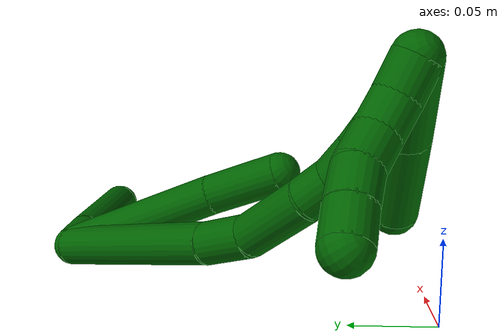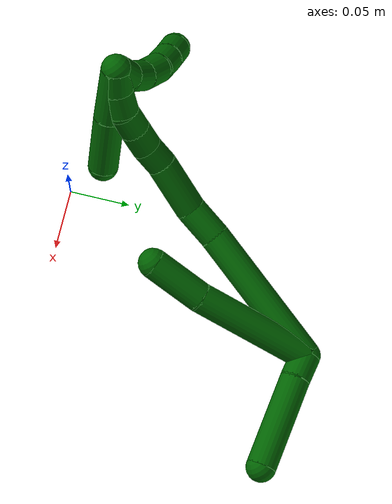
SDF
<sdf version="1.7">
 <world name="default">
  <model name="6">
   <static>0</static>
   <link name="6">
    <collision name="collision-cylinder-e_1_2_8">
     <pose>0.010141 0.017789 -0.047143 -2.78077 0.198615 -0.999927</pose>
     <geometry><cylinder><radius>0.0125</radius><length>0.102795</length></cylinder></geometry>
     <surface>
      <friction><ode><mu>1.16</mu><mu2>1.16</mu2><slip1>0</slip1><slip2>0</slip2></ode></friction>
      <contact><ode><kp>1e+06</kp><kd>1</kd><max_vel>0</max_vel><min_depth>0.001</min_depth></ode></contact>
     </surface>
    </collision>
    <visual name="visual-cylinder-e_1_2_8">
     <pose>0.010141 0.017789 -0.047143 -2.78077 0.198615 -0.999927</pose>
     <geometry><cylinder><radius>0.0125</radius><length>0.102795</length></cylinder></geometry>
     <material><ambient>0 0.392157 0.003922 1</ambient></material>
    </visual>
    <collision name="collision-cylinder-e_2_8_6">
     <pose>0.021891 0.043195 -0.116567 -2.81221 0.06821 -0.40495</pose>
     <geometry><cylinder><radius>0.0125</radius><length>0.047205</length></cylinder></geometry>
     <surface>
      <friction><ode><mu>1.16</mu><mu2>1.16</mu2><slip1>0</slip1><slip2>0</slip2></ode></friction>
      <contact><ode><kp>1e+06</kp><kd>1</kd><max_vel>0</max_vel><min_depth>0.001</min_depth></ode></contact>
     </surface>
    </collision>
    <visual name="visual-cylinder-e_2_8_6">
     <pose>0.021891 0.043195 -0.116567 -2.81221 0.06821 -0.40495</pose>
     <geometry><cylinder><radius>0.0125</radius><length>0.047205</length></cylinder></geometry>
     <material><ambient>0 0.392157 0.003922 1</ambient></material>
    </visual>
    <collision name="collision-cylinder-e_1_2_9">
     <pose>0.010446 0.002463 0.002766 -0.727547 1.23012 -0.525497</pose>
     <geometry><cylinder><radius>0.0125</radius><length>0.022166</length></cylinder></geometry>
     <surface>
      <friction><ode><mu>1.16</mu><mu2>1.16</mu2><slip1>0</slip1><slip2>0</slip2></ode></friction>
      <contact><ode><kp>1e+06</kp><kd>1</kd><max_vel>0</max_vel><min_depth>0.001</min_depth></ode></contact>
     </surface>
    </collision>
    <visual name="visual-cylinder-e_1_2_9">
     <pose>0.010446 0.002463 0.002766 -0.727547 1.23012 -0.525497</pose>
     <geometry><cylinder><radius>0.0125</radius><length>0.022166</length></cylinder></geometry>
     <material><ambient>0 0.392157 0.003922 1</ambient></material>
    </visual>
    <collision name="collision-cylinder-e_2_9_5">
     <pose>0.056399 0.014424 0.01832 -0.638823 1.14908 -0.421862</pose>
     <geometry><cylinder><radius>0.0125</radius><length>0.077834</length></cylinder></geometry>
     <surface>
      <friction><ode><mu>1.16</mu><mu2>1.16</mu2><slip1>0</slip1><slip2>0</slip2></ode></friction>
      <contact><ode><kp>1e+06</kp><kd>1</kd><max_vel>0</max_vel><min_depth>0.001</min_depth></ode></contact>
     </surface>
    </collision>
    <visual name="visual-cylinder-e_2_9_5">
     <pose>0.056399 0.014424 0.01832 -0.638823 1.14908 -0.421862</pose>
     <geometry><cylinder><radius>0.0125</radius><length>0.077834</length></cylinder></geometry>
     <material><ambient>0 0.392157 0.003922 1</ambient></material>
    </visual>
    <collision name="collision-cylinder-e_1_2_10">
     <pose>-0.017722 0.018361 -0.055384 -2.82146 -0.294882 1.48744</pose>
     <geometry><cylinder><radius>0.0125</radius><length>0.12196</length></cylinder></geometry>
     <surface>
      <friction><ode><mu>1.16</mu><mu2>1.16</mu2><slip1>0</slip1><slip2>0</slip2></ode></friction>
      <contact><ode><kp>1e+06</kp><kd>1</kd><max_vel>0</max_vel><min_depth>0.001</min_depth></ode></contact>
     </surface>
    </collision>
    <visual name="visual-cylinder-e_1_2_10">
     <pose>-0.017722 0.018361 -0.055384 -2.82146 -0.294882 1.48744</pose>
     <geometry><cylinder><radius>0.0125</radius><length>0.12196</length></cylinder></geometry>
     <material><ambient>0 0.392157 0.003922 1</ambient></material>
    </visual>
    <collision name="collision-cylinder-e_2_10_11">
     <pose>-0.037919 0.040778 -0.125177 -2.86726 -0.163778 1.07284</pose>
     <geometry><cylinder><radius>0.0125</radius><length>0.030347</length></cylinder></geometry>
     <surface>
      <friction><ode><mu>1.16</mu><mu2>1.16</mu2><slip1>0</slip1><slip2>0</slip2></ode></friction>
      <contact><ode><kp>1e+06</kp><kd>1</kd><max_vel>0</max_vel><min_depth>0.001</min_depth></ode></contact>
     </surface>
    </collision>
    <visual name="visual-cylinder-e_2_10_11">
     <pose>-0.037919 0.040778 -0.125177 -2.86726 -0.163778 1.07284</pose>
     <geometry><cylinder><radius>0.0125</radius><length>0.030347</length></cylinder></geometry>
     <material><ambient>0 0.392157 0.003922 1</ambient></material>
    </visual>
    <collision name="collision-cylinder-e_3_11_12">
     <pose>-0.041983 0.044157 -0.162659 3.11228 -0.068795 -2.33616</pose>
     <geometry><cylinder><radius>0.0125</radius><length>0.046271</length></cylinder></geometry>
     <surface>
      <friction><ode><mu>1.16</mu><mu2>1.16</mu2><slip1>0</slip1><slip2>0</slip2></ode></friction>
      <contact><ode><kp>1e+06</kp><kd>1</kd><max_vel>0</max_vel><min_depth>0.001</min_depth></ode></contact>
     </surface>
    </collision>
    <visual name="visual-cylinder-e_3_11_12">
     <pose>-0.041983 0.044157 -0.162659 3.11228 -0.068795 -2.33616</pose>
     <geometry><cylinder><radius>0.0125</radius><length>0.046271</length></cylinder></geometry>
     <material><ambient>0 0.392157 0.003922 1</ambient></material>
    </visual>
    <collision name="collision-cylinder-e_4_12_13">
     <pose>-0.042605 0.043511 -0.195699 -3.13852 0.096858 -3.07819</pose>
     <geometry><cylinder><radius>0.0125</radius><length>0.020033</length></cylinder></geometry>
     <surface>
      <friction><ode><mu>1.16</mu><mu2>1.16</mu2><slip1>0</slip1><slip2>0</slip2></ode></friction>
      <contact><ode><kp>1e+06</kp><kd>1</kd><max_vel>0</max_vel><min_depth>0.001</min_depth></ode></contact>
     </surface>
    </collision>
    <visual name="visual-cylinder-e_4_12_13">
     <pose>-0.042605 0.043511 -0.195699 -3.13852 0.096858 -3.07819</pose>
     <geometry><cylinder><radius>0.0125</radius><length>0.020033</length></cylinder></geometry>
     <material><ambient>0 0.392157 0.003922 1</ambient></material>
    </visual>
    <collision name="collision-cylinder-e_5_13_14">
     <pose>-0.040394 0.041479 -0.215807 2.9408 0.119508 1.07181</pose>
     <geometry><cylinder><radius>0.0125</radius><length>0.02084</length></cylinder></geometry>
     <surface>
      <friction><ode><mu>1.16</mu><mu2>1.16</mu2><slip1>0</slip1><slip2>0</slip2></ode></friction>
      <contact><ode><kp>1e+06</kp><kd>1</kd><max_vel>0</max_vel><min_depth>0.001</min_depth></ode></contact>
     </surface>
    </collision>
    <visual name="visual-cylinder-e_5_13_14">
     <pose>-0.040394 0.041479 -0.215807 2.9408 0.119508 1.07181</pose>
     <geometry><cylinder><radius>0.0125</radius><length>0.02084</length></cylinder></geometry>
     <material><ambient>0 0.392157 0.003922 1</ambient></material>
    </visual>
    <collision name="collision-cylinder-e_6_14_15">
     <pose>-0.037324 0.036835 -0.235592 2.88027 0.181039 1.20893</pose>
     <geometry><cylinder><radius>0.0125</radius><length>0.020305</length></cylinder></geometry>
     <surface>
      <friction><ode><mu>1.16</mu><mu2>1.16</mu2><slip1>0</slip1><slip2>0</slip2></ode></friction>
      <contact><ode><kp>1e+06</kp><kd>1</kd><max_vel>0</max_vel><min_depth>0.001</min_depth></ode></contact>
     </surface>
    </collision>
    <visual name="visual-cylinder-e_6_14_15">
     <pose>-0.037324 0.036835 -0.235592 2.88027 0.181039 1.20893</pose>
     <geometry><cylinder><radius>0.0125</radius><length>0.020305</length></cylinder></geometry>
     <material><ambient>0 0.392157 0.003922 1</ambient></material>
    </visual>
    <collision name="collision-cylinder-e_7_15_16">
     <pose>-0.03643 0.030736 -0.254647 2.78363 -0.092807 -0.502499</pose>
     <geometry><cylinder><radius>0.0125</radius><length>0.020175</length></cylinder></geometry>
     <surface>
      <friction><ode><mu>1.16</mu><mu2>1.16</mu2><slip1>0</slip1><slip2>0</slip2></ode></friction>
      <contact><ode><kp>1e+06</kp><kd>1</kd><max_vel>0</max_vel><min_depth>0.001</min_depth></ode></contact>
     </surface>
    </collision>
    <visual name="visual-cylinder-e_7_15_16">
     <pose>-0.03643 0.030736 -0.254647 2.78363 -0.092807 -0.502499</pose>
     <geometry><cylinder><radius>0.0125</radius><length>0.020175</length></cylinder></geometry>
     <material><ambient>0 0.392157 0.003922 1</ambient></material>
    </visual>
    <collision name="collision-cylinder-e_8_16_1">
     <pose>-0.038751 0.021867 -0.27243 2.57319 -0.138526 -0.466345</pose>
     <geometry><cylinder><radius>0.0125</radius><length>0.020069</length></cylinder></geometry>
     <surface>
      <friction><ode><mu>1.16</mu><mu2>1.16</mu2><slip1>0</slip1><slip2>0</slip2></ode></friction>
      <contact><ode><kp>1e+06</kp><kd>1</kd><max_vel>0</max_vel><min_depth>0.001</min_depth></ode></contact>
     </surface>
    </collision>
    <visual name="visual-cylinder-e_8_16_1">
     <pose>-0.038751 0.021867 -0.27243 2.57319 -0.138526 -0.466345</pose>
     <geometry><cylinder><radius>0.0125</radius><length>0.020069</length></cylinder></geometry>
     <material><ambient>0 0.392157 0.003922 1</ambient></material>
    </visual>
    <collision name="collision-cylinder-e_1_1_17">
     <pose>-0.037107 0.032793 -0.263467 -0.753769 0.126711 -0.05021</pose>
     <geometry><cylinder><radius>0.0125</radius><length>0.047947</length></cylinder></geometry>
     <surface>
      <friction><ode><mu>1.16</mu><mu2>1.16</mu2><slip1>0</slip1><slip2>0</slip2></ode></friction>
      <contact><ode><kp>1e+06</kp><kd>1</kd><max_vel>0</max_vel><min_depth>0.001</min_depth></ode></contact>
     </surface>
    </collision>
    <visual name="visual-cylinder-e_1_1_17">
     <pose>-0.037107 0.032793 -0.263467 -0.753769 0.126711 -0.05021</pose>
     <geometry><cylinder><radius>0.0125</radius><length>0.047947</length></cylinder></geometry>
     <material><ambient>0 0.392157 0.003922 1</ambient></material>
    </visual>
    <collision name="collision-cylinder-e_2_17_4">
     <pose>-0.031545 0.066418 -0.226893 -0.733902 0.09745 -0.037481</pose>
     <geometry><cylinder><radius>0.0125</radius><length>0.052053</length></cylinder></geometry>
     <surface>
      <friction><ode><mu>1.16</mu><mu2>1.16</mu2><slip1>0</slip1><slip2>0</slip2></ode></friction>
      <contact><ode><kp>1e+06</kp><kd>1</kd><max_vel>0</max_vel><min_depth>0.001</min_depth></ode></contact>
     </surface>
    </collision>
    <visual name="visual-cylinder-e_2_17_4">
     <pose>-0.031545 0.066418 -0.226893 -0.733902 0.09745 -0.037481</pose>
     <geometry><cylinder><radius>0.0125</radius><length>0.052053</length></cylinder></geometry>
     <material><ambient>0 0.392157 0.003922 1</ambient></material>
    </visual>
    <collision name="collision-cylinder-e_1_1_18">
     <pose>-0.046041 0.01932 -0.273237 -0.354712 -0.631584 0.11699</pose>
     <geometry><cylinder><radius>0.0125</radius><length>0.02</length></cylinder></geometry>
     <surface>
      <friction><ode><mu>1.16</mu><mu2>1.16</mu2><slip1>0</slip1><slip2>0</slip2></ode></friction>
      <contact><ode><kp>1e+06</kp><kd>1</kd><max_vel>0</max_vel><min_depth>0.001</min_depth></ode></contact>
     </surface>
    </collision>
    <visual name="visual-cylinder-e_1_1_18">
     <pose>-0.046041 0.01932 -0.273237 -0.354712 -0.631584 0.11699</pose>
     <geometry><cylinder><radius>0.0125</radius><length>0.02</length></cylinder></geometry>
     <material><ambient>0 0.392157 0.003922 1</ambient></material>
    </visual>
    <collision name="collision-cylinder-e_2_18_19">
     <pose>-0.060107 0.023223 -0.259996 -0.191414 -0.954755 0.099237</pose>
     <geometry><cylinder><radius>0.0125</radius><length>0.02</length></cylinder></geometry>
     <surface>
      <friction><ode><mu>1.16</mu><mu2>1.16</mu2><slip1>0</slip1><slip2>0</slip2></ode></friction>
      <contact><ode><kp>1e+06</kp><kd>1</kd><max_vel>0</max_vel><min_depth>0.001</min_depth></ode></contact>
     </surface>
    </collision>
    <visual name="visual-cylinder-e_2_18_19">
     <pose>-0.060107 0.023223 -0.259996 -0.191414 -0.954755 0.099237</pose>
     <geometry><cylinder><radius>0.0125</radius><length>0.02</length></cylinder></geometry>
     <material><ambient>0 0.392157 0.003922 1</ambient></material>
    </visual>
    <collision name="collision-cylinder-e_3_19_20">
     <pose>-0.077594 0.024199 -0.250716 0.034008 -1.20146 -0.023304</pose>
     <geometry><cylinder><radius>0.0125</radius><length>0.02</length></cylinder></geometry>
     <surface>
      <friction><ode><mu>1.16</mu><mu2>1.16</mu2><slip1>0</slip1><slip2>0</slip2></ode></friction>
      <contact><ode><kp>1e+06</kp><kd>1</kd><max_vel>0</max_vel><min_depth>0.001</min_depth></ode></contact>
     </surface>
    </collision>
    <visual name="visual-cylinder-e_3_19_20">
     <pose>-0.077594 0.024199 -0.250716 0.034008 -1.20146 -0.023304</pose>
     <geometry><cylinder><radius>0.0125</radius><length>0.02</length></cylinder></geometry>
     <material><ambient>0 0.392157 0.003922 1</ambient></material>
    </visual>
    <collision name="collision-cylinder-e_4_20_21">
     <pose>-0.096532 0.025988 -0.245119 -0.765436 -1.29132 0.588936</pose>
     <geometry><cylinder><radius>0.0125</radius><length>0.02</length></cylinder></geometry>
     <surface>
      <friction><ode><mu>1.16</mu><mu2>1.16</mu2><slip1>0</slip1><slip2>0</slip2></ode></friction>
      <contact><ode><kp>1e+06</kp><kd>1</kd><max_vel>0</max_vel><min_depth>0.001</min_depth></ode></contact>
     </surface>
    </collision>
    <visual name="visual-cylinder-e_4_20_21">
     <pose>-0.096532 0.025988 -0.245119 -0.765436 -1.29132 0.588936</pose>
     <geometry><cylinder><radius>0.0125</radius><length>0.02</length></cylinder></geometry>
     <material><ambient>0 0.392157 0.003922 1</ambient></material>
    </visual>
    <collision name="collision-cylinder-e_5_21_3">
     <pose>-0.115666 0.03038 -0.241347 -0.947765 -1.26029 0.715873</pose>
     <geometry><cylinder><radius>0.0125</radius><length>0.02</length></cylinder></geometry>
     <surface>
      <friction><ode><mu>1.16</mu><mu2>1.16</mu2><slip1>0</slip1><slip2>0</slip2></ode></friction>
      <contact><ode><kp>1e+06</kp><kd>1</kd><max_vel>0</max_vel><min_depth>0.001</min_depth></ode></contact>
     </surface>
    </collision>
    <visual name="visual-cylinder-e_5_21_3">
     <pose>-0.115666 0.03038 -0.241347 -0.947765 -1.26029 0.715873</pose>
     <geometry><cylinder><radius>0.0125</radius><length>0.02</length></cylinder></geometry>
     <material><ambient>0 0.392157 0.003922 1</ambient></material>
    </visual>
    <collision name="collision-sphere-3">
     <pose>-0.125187 0.032862 -0.239564 0 -0 0</pose>
     <geometry><sphere><radius>0.0125</radius></sphere></geometry>
     <surface>
      <friction><ode><mu>1.16</mu><mu2>1.16</mu2><slip1>0</slip1><slip2>0</slip2></ode></friction>
      <contact><ode><kp>1e+06</kp><kd>1</kd><max_vel>0</max_vel><min_depth>0.001</min_depth></ode></contact>
     </surface>
    </collision>
    <visual name="visual-sphere-3">
     <pose>-0.125187 0.032862 -0.239564 0 -0 0</pose>
     <geometry><sphere><radius>0.0125</radius></sphere></geometry>
     <material><ambient>0 0.392157 0.003922 1</ambient></material>
    </visual>
    <collision name="collision-sphere-21">
     <pose>-0.106144 0.027899 -0.24313 0 -0 0</pose>
     <geometry><sphere><radius>0.0125</radius></sphere></geometry>
     <surface>
      <friction><ode><mu>1.16</mu><mu2>1.16</mu2><slip1>0</slip1><slip2>0</slip2></ode></friction>
      <contact><ode><kp>1e+06</kp><kd>1</kd><max_vel>0</max_vel><min_depth>0.001</min_depth></ode></contact>
     </surface>
    </collision>
    <visual name="visual-sphere-21">
     <pose>-0.106144 0.027899 -0.24313 0 -0 0</pose>
     <geometry><sphere><radius>0.0125</radius></sphere></geometry>
     <material><ambient>0 0.392157 0.003922 1</ambient></material>
    </visual>
    <collision name="collision-sphere-20">
     <pose>-0.08692 0.024076 -0.247108 0 -0 0</pose>
     <geometry><sphere><radius>0.0125</radius></sphere></geometry>
     <surface>
      <friction><ode><mu>1.16</mu><mu2>1.16</mu2><slip1>0</slip1><slip2>0</slip2></ode></friction>
      <contact><ode><kp>1e+06</kp><kd>1</kd><max_vel>0</max_vel><min_depth>0.001</min_depth></ode></contact>
     </surface>
    </collision>
    <visual name="visual-sphere-20">
     <pose>-0.08692 0.024076 -0.247108 0 -0 0</pose>
     <geometry><sphere><radius>0.0125</radius></sphere></geometry>
     <material><ambient>0 0.392157 0.003922 1</ambient></material>
    </visual>
    <collision name="collision-sphere-19">
     <pose>-0.068268 0.024322 -0.254324 0 -0 0</pose>
     <geometry><sphere><radius>0.0125</radius></sphere></geometry>
     <surface>
      <friction><ode><mu>1.16</mu><mu2>1.16</mu2><slip1>0</slip1><slip2>0</slip2></ode></friction>
      <contact><ode><kp>1e+06</kp><kd>1</kd><max_vel>0</max_vel><min_depth>0.001</min_depth></ode></contact>
     </surface>
    </collision>
    <visual name="visual-sphere-19">
     <pose>-0.068268 0.024322 -0.254324 0 -0 0</pose>
     <geometry><sphere><radius>0.0125</radius></sphere></geometry>
     <material><ambient>0 0.392157 0.003922 1</ambient></material>
    </visual>
    <collision name="collision-sphere-10">
     <pose>-0.035445 0.036723 -0.110767 0 -0 0</pose>
     <geometry><sphere><radius>0.0125</radius></sphere></geometry>
     <surface>
      <friction><ode><mu>1.16</mu><mu2>1.16</mu2><slip1>0</slip1><slip2>0</slip2></ode></friction>
      <contact><ode><kp>1e+06</kp><kd>1</kd><max_vel>0</max_vel><min_depth>0.001</min_depth></ode></contact>
     </surface>
    </collision>
    <visual name="visual-sphere-10">
     <pose>-0.035445 0.036723 -0.110767 0 -0 0</pose>
     <geometry><sphere><radius>0.0125</radius></sphere></geometry>
     <material><ambient>0 0.392157 0.003922 1</ambient></material>
    </visual>
    <collision name="collision-sphere-5">
     <pose>0.091907 0.023922 0.031108 0 -0 0</pose>
     <geometry><sphere><radius>0.0125</radius></sphere></geometry>
     <surface>
      <friction><ode><mu>1.16</mu><mu2>1.16</mu2><slip1>0</slip1><slip2>0</slip2></ode></friction>
      <contact><ode><kp>1e+06</kp><kd>1</kd><max_vel>0</max_vel><min_depth>0.001</min_depth></ode></contact>
     </surface>
    </collision>
    <visual name="visual-sphere-5">
     <pose>0.091907 0.023922 0.031108 0 -0 0</pose>
     <geometry><sphere><radius>0.0125</radius></sphere></geometry>
     <material><ambient>0 0.392157 0.003922 1</ambient></material>
    </visual>
    <collision name="collision-sphere-6">
     <pose>0.0235 0.050812 -0.138848 0 -0 0</pose>
     <geometry><sphere><radius>0.0125</radius></sphere></geometry>
     <surface>
      <friction><ode><mu>1.16</mu><mu2>1.16</mu2><slip1>0</slip1><slip2>0</slip2></ode></friction>
      <contact><ode><kp>1e+06</kp><kd>1</kd><max_vel>0</max_vel><min_depth>0.001</min_depth></ode></contact>
     </surface>
    </collision>
    <visual name="visual-sphere-6">
     <pose>0.0235 0.050812 -0.138848 0 -0 0</pose>
     <geometry><sphere><radius>0.0125</radius></sphere></geometry>
     <material><ambient>0 0.392157 0.003922 1</ambient></material>
    </visual>
    <collision name="collision-sphere-9">
     <pose>0.020892 0.004925 0.005531 0 -0 0</pose>
     <geometry><sphere><radius>0.0125</radius></sphere></geometry>
     <surface>
      <friction><ode><mu>1.16</mu><mu2>1.16</mu2><slip1>0</slip1><slip2>0</slip2></ode></friction>
      <contact><ode><kp>1e+06</kp><kd>1</kd><max_vel>0</max_vel><min_depth>0.001</min_depth></ode></contact>
     </surface>
    </collision>
    <visual name="visual-sphere-9">
     <pose>0.020892 0.004925 0.005531 0 -0 0</pose>
     <geometry><sphere><radius>0.0125</radius></sphere></geometry>
     <material><ambient>0 0.392157 0.003922 1</ambient></material>
    </visual>
    <collision name="collision-sphere-2">
     <geometry><sphere><radius>0.0125</radius></sphere></geometry>
     <surface>
      <friction><ode><mu>1.16</mu><mu2>1.16</mu2><slip1>0</slip1><slip2>0</slip2></ode></friction>
      <contact><ode><kp>1e+06</kp><kd>1</kd><max_vel>0</max_vel><min_depth>0.001</min_depth></ode></contact>
     </surface>
    </collision>
    <visual name="visual-sphere-2">
     <geometry><sphere><radius>0.0125</radius></sphere></geometry>
     <material><ambient>0 0.392157 0.003922 1</ambient></material>
    </visual>
    <collision name="collision-sphere-8">
     <pose>0.020283 0.035578 -0.094285 0 -0 0</pose>
     <geometry><sphere><radius>0.0125</radius></sphere></geometry>
     <surface>
      <friction><ode><mu>1.16</mu><mu2>1.16</mu2><slip1>0</slip1><slip2>0</slip2></ode></friction>
      <contact><ode><kp>1e+06</kp><kd>1</kd><max_vel>0</max_vel><min_depth>0.001</min_depth></ode></contact>
     </surface>
    </collision>
    <visual name="visual-sphere-8">
     <pose>0.020283 0.035578 -0.094285 0 -0 0</pose>
     <geometry><sphere><radius>0.0125</radius></sphere></geometry>
     <material><ambient>0 0.392157 0.003922 1</ambient></material>
    </visual>
    <collision name="collision-sphere-11">
     <pose>-0.040393 0.044834 -0.139588 0 -0 0</pose>
     <geometry><sphere><radius>0.0125</radius></sphere></geometry>
     <surface>
      <friction><ode><mu>1.16</mu><mu2>1.16</mu2><slip1>0</slip1><slip2>0</slip2></ode></friction>
      <contact><ode><kp>1e+06</kp><kd>1</kd><max_vel>0</max_vel><min_depth>0.001</min_depth></ode></contact>
     </surface>
    </collision>
    <visual name="visual-sphere-11">
     <pose>-0.040393 0.044834 -0.139588 0 -0 0</pose>
     <geometry><sphere><radius>0.0125</radius></sphere></geometry>
     <material><ambient>0 0.392157 0.003922 1</ambient></material>
    </visual>
    <collision name="collision-sphere-12">
     <pose>-0.043573 0.043481 -0.185729 0 -0 0</pose>
     <geometry><sphere><radius>0.0125</radius></sphere></geometry>
     <surface>
      <friction><ode><mu>1.16</mu><mu2>1.16</mu2><slip1>0</slip1><slip2>0</slip2></ode></friction>
      <contact><ode><kp>1e+06</kp><kd>1</kd><max_vel>0</max_vel><min_depth>0.001</min_depth></ode></contact>
     </surface>
    </collision>
    <visual name="visual-sphere-12">
     <pose>-0.043573 0.043481 -0.185729 0 -0 0</pose>
     <geometry><sphere><radius>0.0125</radius></sphere></geometry>
     <material><ambient>0 0.392157 0.003922 1</ambient></material>
    </visual>
    <collision name="collision-sphere-13">
     <pose>-0.041636 0.043542 -0.205669 0 -0 0</pose>
     <geometry><sphere><radius>0.0125</radius></sphere></geometry>
     <surface>
      <friction><ode><mu>1.16</mu><mu2>1.16</mu2><slip1>0</slip1><slip2>0</slip2></ode></friction>
      <contact><ode><kp>1e+06</kp><kd>1</kd><max_vel>0</max_vel><min_depth>0.001</min_depth></ode></contact>
     </surface>
    </collision>
    <visual name="visual-sphere-13">
     <pose>-0.041636 0.043542 -0.205669 0 -0 0</pose>
     <geometry><sphere><radius>0.0125</radius></sphere></geometry>
     <material><ambient>0 0.392157 0.003922 1</ambient></material>
    </visual>
    <collision name="collision-sphere-14">
     <pose>-0.039152 0.039415 -0.225944 0 -0 0</pose>
     <geometry><sphere><radius>0.0125</radius></sphere></geometry>
     <surface>
      <friction><ode><mu>1.16</mu><mu2>1.16</mu2><slip1>0</slip1><slip2>0</slip2></ode></friction>
      <contact><ode><kp>1e+06</kp><kd>1</kd><max_vel>0</max_vel><min_depth>0.001</min_depth></ode></contact>
     </surface>
    </collision>
    <visual name="visual-sphere-14">
     <pose>-0.039152 0.039415 -0.225944 0 -0 0</pose>
     <geometry><sphere><radius>0.0125</radius></sphere></geometry>
     <material><ambient>0 0.392157 0.003922 1</ambient></material>
    </visual>
    <collision name="collision-sphere-15">
     <pose>-0.035496 0.034255 -0.245239 0 -0 0</pose>
     <geometry><sphere><radius>0.0125</radius></sphere></geometry>
     <surface>
      <friction><ode><mu>1.16</mu><mu2>1.16</mu2><slip1>0</slip1><slip2>0</slip2></ode></friction>
      <contact><ode><kp>1e+06</kp><kd>1</kd><max_vel>0</max_vel><min_depth>0.001</min_depth></ode></contact>
     </surface>
    </collision>
    <visual name="visual-sphere-15">
     <pose>-0.035496 0.034255 -0.245239 0 -0 0</pose>
     <geometry><sphere><radius>0.0125</radius></sphere></geometry>
     <material><ambient>0 0.392157 0.003922 1</ambient></material>
    </visual>
    <collision name="collision-sphere-16">
     <pose>-0.037365 0.027217 -0.264054 0 -0 0</pose>
     <geometry><sphere><radius>0.0125</radius></sphere></geometry>
     <surface>
      <friction><ode><mu>1.16</mu><mu2>1.16</mu2><slip1>0</slip1><slip2>0</slip2></ode></friction>
      <contact><ode><kp>1e+06</kp><kd>1</kd><max_vel>0</max_vel><min_depth>0.001</min_depth></ode></contact>
     </surface>
    </collision>
    <visual name="visual-sphere-16">
     <pose>-0.037365 0.027217 -0.264054 0 -0 0</pose>
     <geometry><sphere><radius>0.0125</radius></sphere></geometry>
     <material><ambient>0 0.392157 0.003922 1</ambient></material>
    </visual>
    <collision name="collision-sphere-1">
     <pose>-0.040137 0.016517 -0.280806 0 -0 0</pose>
     <geometry><sphere><radius>0.0125</radius></sphere></geometry>
     <surface>
      <friction><ode><mu>1.16</mu><mu2>1.16</mu2><slip1>0</slip1><slip2>0</slip2></ode></friction>
      <contact><ode><kp>1e+06</kp><kd>1</kd><max_vel>0</max_vel><min_depth>0.001</min_depth></ode></contact>
     </surface>
    </collision>
    <visual name="visual-sphere-1">
     <pose>-0.040137 0.016517 -0.280806 0 -0 0</pose>
     <geometry><sphere><radius>0.0125</radius></sphere></geometry>
     <material><ambient>0 0.392157 0.003922 1</ambient></material>
    </visual>
    <collision name="collision-sphere-18">
     <pose>-0.051945 0.022123 -0.265669 0 -0 0</pose>
     <geometry><sphere><radius>0.0125</radius></sphere></geometry>
     <surface>
      <friction><ode><mu>1.16</mu><mu2>1.16</mu2><slip1>0</slip1><slip2>0</slip2></ode></friction>
      <contact><ode><kp>1e+06</kp><kd>1</kd><max_vel>0</max_vel><min_depth>0.001</min_depth></ode></contact>
     </surface>
    </collision>
    <visual name="visual-sphere-18">
     <pose>-0.051945 0.022123 -0.265669 0 -0 0</pose>
     <geometry><sphere><radius>0.0125</radius></sphere></geometry>
     <material><ambient>0 0.392157 0.003922 1</ambient></material>
    </visual>
    <collision name="collision-sphere-17">
     <pose>-0.034077 0.049068 -0.246127 0 -0 0</pose>
     <geometry><sphere><radius>0.0125</radius></sphere></geometry>
     <surface>
      <friction><ode><mu>1.16</mu><mu2>1.16</mu2><slip1>0</slip1><slip2>0</slip2></ode></friction>
      <contact><ode><kp>1e+06</kp><kd>1</kd><max_vel>0</max_vel><min_depth>0.001</min_depth></ode></contact>
     </surface>
    </collision>
    <visual name="visual-sphere-17">
     <pose>-0.034077 0.049068 -0.246127 0 -0 0</pose>
     <geometry><sphere><radius>0.0125</radius></sphere></geometry>
     <material><ambient>0 0.392157 0.003922 1</ambient></material>
    </visual>
    <collision name="collision-sphere-4">
     <pose>-0.029013 0.083767 -0.207658 0 -0 0</pose>
     <geometry><sphere><radius>0.0125</radius></sphere></geometry>
     <surface>
      <friction><ode><mu>1.16</mu><mu2>1.16</mu2><slip1>0</slip1><slip2>0</slip2></ode></friction>
      <contact><ode><kp>1e+06</kp><kd>1</kd><max_vel>0</max_vel><min_depth>0.001</min_depth></ode></contact>
     </surface>
    </collision>
    <visual name="visual-sphere-4">
     <pose>-0.029013 0.083767 -0.207658 0 -0 0</pose>
     <geometry><sphere><radius>0.0125</radius></sphere></geometry>
     <material><ambient>0 0.392157 0.003922 1</ambient></material>
    </visual>
    <inertial>
     <pose>-0.018484 0.0288 -0.134132 0 -0 0</pose>
     <mass>0.75</mass>
     <inertia>
      <ixx>0.000169</ixx>
      <ixy>0</ixy>
      <ixz>0</ixz>
      <iyy>9.1e-05</iyy>
      <iyz>0</iyz>
      <izz>-0.000142</izz>
     </inertia>
    </inertial>
   </link>
   <pose>0.092796 0.222835 0.016341 -2.27781 -0.455327 -0.219953</pose>
  </model>
 </world>
</sdf>
